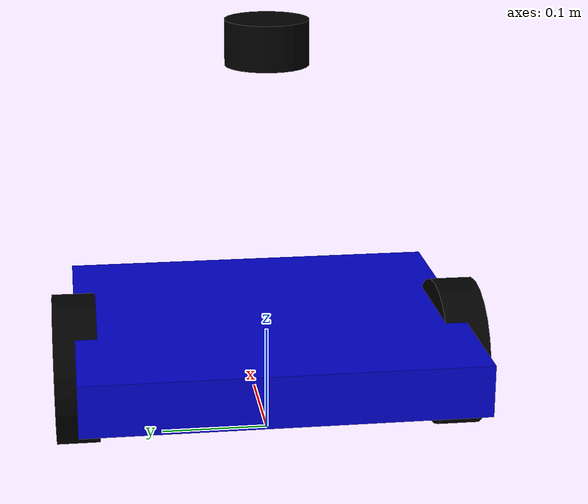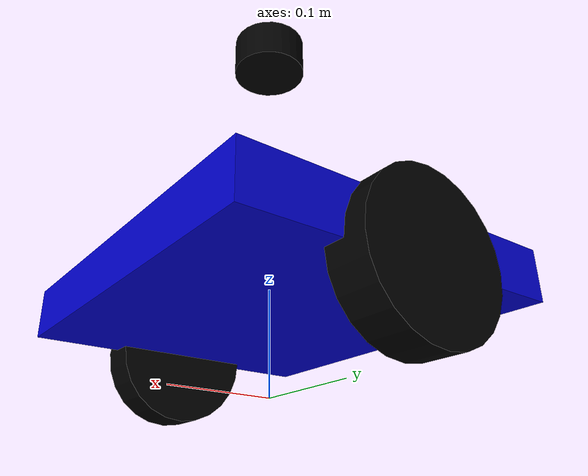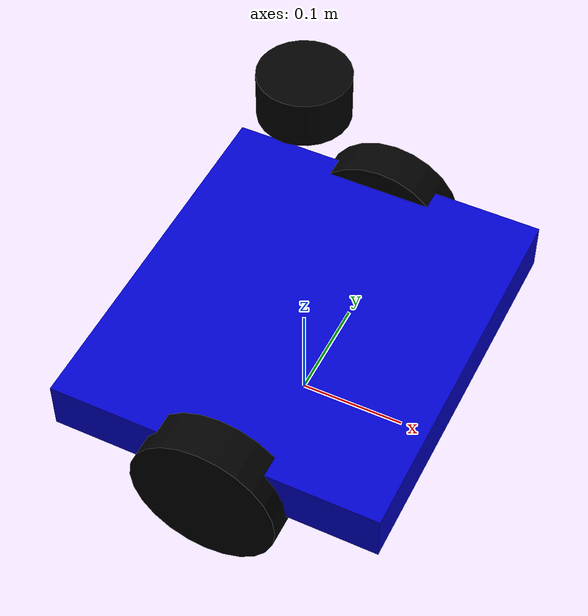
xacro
<?xml version="1.0"?>
<robot xmlns:xacro="http://www.ros.org/wiki/xacro" name="differential_robot">

    <!-- Robot Properties -->
    <xacro:property name="base_width" value="0.360"/>  <!-- Left-right distance between wheels -->
    <xacro:property name="base_length" value="0.312"/> <!-- Front-back distance between wheels -->
    <xacro:property name="base_height" value="0.048"/>   <!-- Height of the base from ground -->
    <xacro:property name="wheel_radius" value="0.070"/> <!-- Wheel radius -->
    <xacro:property name="wheel_width" value="0.040"/>  <!-- Wheel width -->

    <!-- Lidar Properties -->
    <xacro:property name="lidar_height" value="0.375"/> <!-- Height from ground -->

    <!-- Colors -->
    <material name="black">
        <color rgba="0.0 0.0 0.0 1.0"/>
    </material>
    <material name="blue">
        <color rgba="0.0 0.0 0.8 1.0"/>
    </material>

    <!-- Base Link -->
    <link name="base_footprint"/>

    <joint name="base_joint" type="fixed">
        <parent link="base_footprint"/>
        <child link="base_link"/>
        <origin xyz="0 0 ${wheel_radius}" rpy="0 0 0"/>
    </joint>

    <link name="base_link">
        <visual>
            <geometry>
                <box size="${base_length} ${base_width} ${base_height}"/>
            </geometry>
            <material name="blue"/>
            <origin xyz="0 0 ${base_height/2}" rpy="0 0 0"/>
        </visual>
        <collision>                                     <!-- need for slam_toolbox and nav2-->
            <geometry>
                <box size="${base_length} ${base_width} ${base_height}"/>
            </geometry>
            <origin xyz="0 0 ${base_height/2}" rpy="0 0 0"/>
        </collision>
        <inertial>                                      <!-- don't need this tag without Gazebo -->
            <mass value="5.0"/>
            <inertia ixx="0.1" ixy="0" ixz="0" iyy="0.1" iyz="0" izz="0.1"/>
        </inertial>
    </link>

    <!-- Wheels for 2-motor differential drive -->
    <xacro:macro name="wheel" params="prefix x y">
        <link name="${prefix}_wheel">
            <visual>
                <geometry>
                    <cylinder radius="${wheel_radius}" length="${wheel_width}"/>
                </geometry>
                <material name="black"/>
                <origin xyz="0 0 0" rpy="${pi/2} 0 0"/>
            </visual>
            <collision>
                <geometry>
                    <cylinder radius="${wheel_radius}" length="${wheel_width}"/>
                </geometry>
                <origin xyz="0 0 0" rpy="${pi/2} 0 0"/>
            </collision>
            <inertial>
                <mass value="0.5"/>
                <inertia ixx="0.01" ixy="0" ixz="0" iyy="0.01" iyz="0" izz="0.01"/>
            </inertial>
        </link>

        <joint name="${prefix}_wheel_joint" type="continuous">
            <parent link="base_link"/>
            <child link="${prefix}_wheel"/>
            <origin xyz="${x} ${y} 0" rpy="0 0 0"/>
            <axis xyz="0 1 0"/>
        </joint>
    </xacro:macro>

    <!-- Create 2 wheels for differential drive -->
    <xacro:wheel prefix="left" x="0" y="${base_width/2}"/>
    <xacro:wheel prefix="right" x="0" y="-${base_width/2}"/>

    <!-- Lidar -->
    <link name="laser">
        <visual>
            <geometry>
                <cylinder radius="0.038" length="0.041"/>
            </geometry>
            <material name="black"/>
        </visual>
        <collision>
            <geometry>
                <cylinder radius="0.038" length="0.041"/>
            </geometry>
        </collision>
        <inertial>
            <mass value="0.1"/>
            <inertia ixx="0.001" ixy="0" ixz="0" iyy="0.001" iyz="0" izz="0.001"/>
        </inertial>
    </link>

    <joint name="laser_joint" type="fixed">
        <parent link="base_link"/>
        <child link="laser"/>
        <origin xyz="0 0 ${lidar_height - wheel_radius}" rpy="0 0 3.1416"/> <!-- fixed the lidar -->
    </joint>

</robot>
